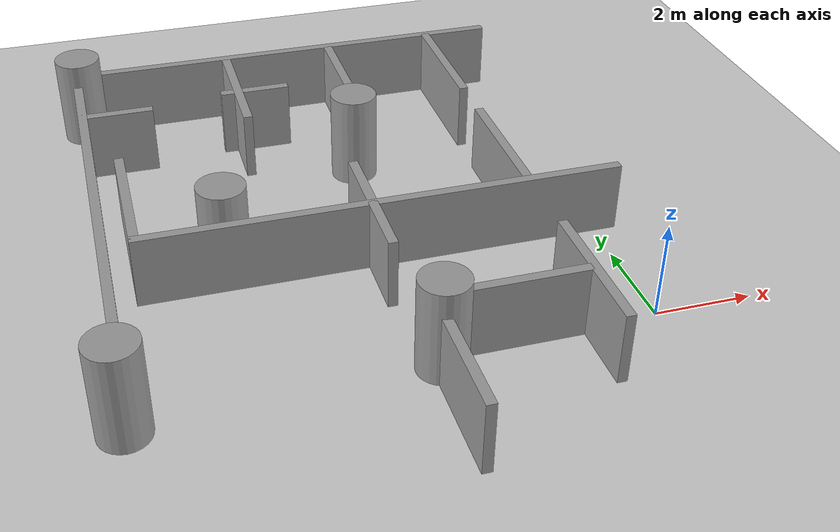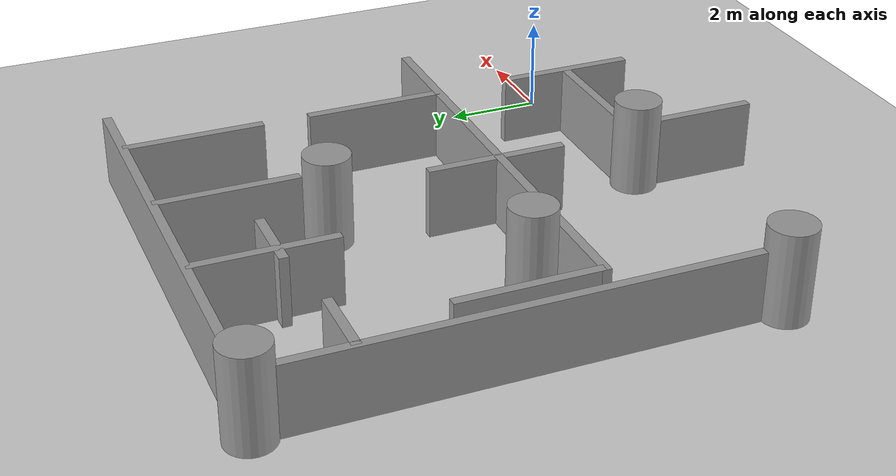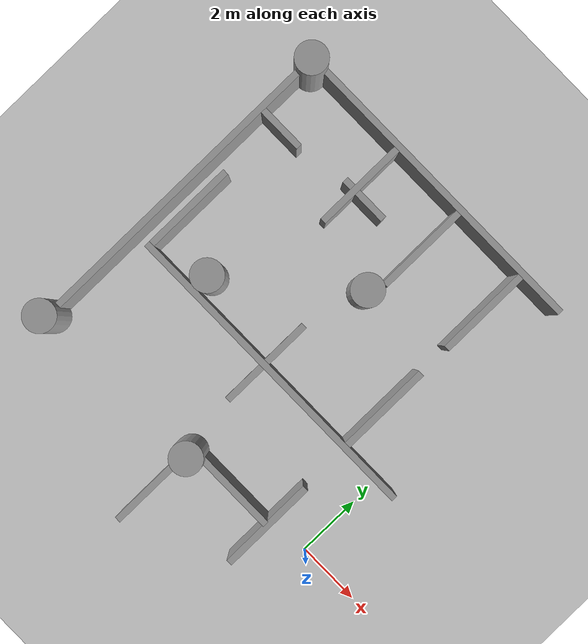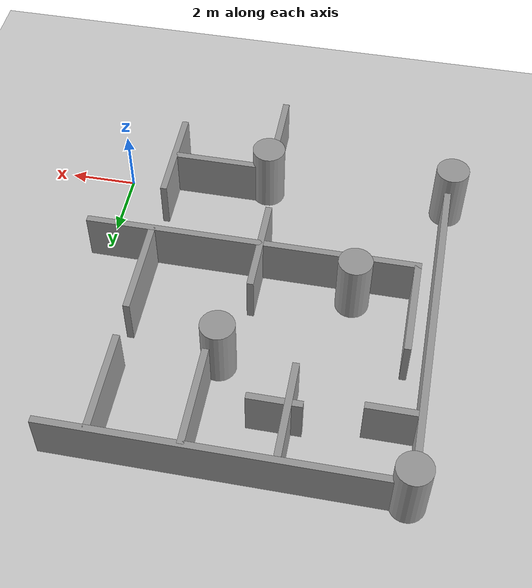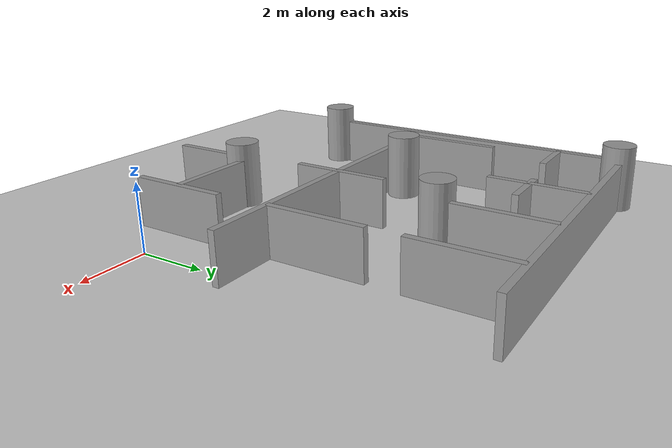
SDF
<sdf version="1.7">
 <world name="default">
  <model name="ground_plane">
   <static>1</static>
   <link name="link">
    <collision name="collision">
     <geometry><plane><normal>0 0 1</normal><size>100 100</size></plane></geometry>
     <surface><friction><ode><mu>100</mu><mu2>50</mu2></ode></friction></surface>
    </collision>
    <visual name="visual">
     <cast_shadows>0</cast_shadows>
     <geometry><plane><normal>0 0 1</normal><size>100 100</size></plane></geometry>
     <material>
      <script><uri>file://media/materials/scripts/gazebo.material</uri><name>Gazebo/Grey</name></script>
     </material>
    </visual>
   </link>
  </model>
  <model name="wall_10x3_clone">
   <link name="link">
    <inertial>
     <mass>1</mass>
     <inertia>
      <ixx>0.166667</ixx>
      <ixy>0</ixy>
      <ixz>0</ixz>
      <iyy>0.166667</iyy>
      <iyz>0</iyz>
      <izz>0.166667</izz>
     </inertia>
    </inertial>
    <visual name="visual">
     <geometry><box><size>10 0.2 1.5</size></box></geometry>
     <material>
      <script><name>Gazebo/Grey</name><uri>file://media/materials/scripts/gazebo.material</uri></script>
      <shader type="pixel"><normal_map>__default__</normal_map></shader>
      <ambient>0.3 0.3 0.3 1</ambient>
      <diffuse>0.7 0.7 0.7 1</diffuse>
      <specular>0.01 0.01 0.01 1</specular>
      <emissive>0 0 0 1</emissive>
     </material>
    </visual>
    <collision name="collision">
     <geometry><box><size>10 0.2 1.5</size></box></geometry>
     <surface>
      <friction>
       <ode><mu>1</mu><mu2>1</mu2><fdir1>0 0 0</fdir1><slip1>0</slip1><slip2>0</slip2></ode>
       <torsional>
        <coefficient>1</coefficient>
        <patch_radius>0</patch_radius>
        <surface_radius>0</surface_radius>
        <use_patch_radius>1</use_patch_radius>
        <ode><slip>0</slip></ode>
       </torsional>
      </friction>
      <bounce><restitution_coefficient>0</restitution_coefficient><threshold>1e+06</threshold></bounce>
      <contact>
       <collide_without_contact>0</collide_without_contact>
       <collide_without_contact_bitmask>1</collide_without_contact_bitmask>
       <collide_bitmask>1</collide_bitmask>
       <ode>
        <soft_cfm>0</soft_cfm>
        <soft_erp>0.2</soft_erp>
        <kp>1e+13</kp>
        <kd>1</kd>
        <max_vel>0.01</max_vel>
        <min_depth>0</min_depth>
       </ode>
       <bullet>
        <split_impulse>1</split_impulse>
        <split_impulse_penetration_threshold>-0.01</split_impulse_penetration_threshold>
        <soft_cfm>0</soft_cfm>
        <soft_erp>0.2</soft_erp>
        <kp>1e+13</kp>
        <kd>1</kd>
       </bullet>
      </contact>
     </surface>
    </collision>
   </link>
   <static>1</static>
   <pose>-5 10 0.75 0 -0 0</pose>
  </model>
  <model name="wall_10x3_clone_3_clone">
   <link name="link">
    <inertial>
     <mass>1</mass>
     <inertia>
      <ixx>0.166667</ixx>
      <ixy>0</ixy>
      <ixz>0</ixz>
      <iyy>0.166667</iyy>
      <iyz>0</iyz>
      <izz>0.166667</izz>
     </inertia>
    </inertial>
    <visual name="visual">
     <geometry><box><size>10 0.2 1.5</size></box></geometry>
     <material>
      <script><name>Gazebo/Grey</name><uri>file://media/materials/scripts/gazebo.material</uri></script>
      <shader type="pixel"><normal_map>__default__</normal_map></shader>
      <ambient>0.3 0.3 0.3 1</ambient>
      <diffuse>0.7 0.7 0.7 1</diffuse>
      <specular>0.01 0.01 0.01 1</specular>
      <emissive>0 0 0 1</emissive>
     </material>
    </visual>
    <collision name="collision">
     <geometry><box><size>10 0.2 1.5</size></box></geometry>
     <surface>
      <friction>
       <ode><mu>1</mu><mu2>1</mu2><fdir1>0 0 0</fdir1><slip1>0</slip1><slip2>0</slip2></ode>
       <torsional>
        <coefficient>1</coefficient>
        <patch_radius>0</patch_radius>
        <surface_radius>0</surface_radius>
        <use_patch_radius>1</use_patch_radius>
        <ode><slip>0</slip></ode>
       </torsional>
      </friction>
      <bounce><restitution_coefficient>0</restitution_coefficient><threshold>1e+06</threshold></bounce>
      <contact>
       <collide_without_contact>0</collide_without_contact>
       <collide_without_contact_bitmask>1</collide_without_contact_bitmask>
       <collide_bitmask>1</collide_bitmask>
       <ode>
        <soft_cfm>0</soft_cfm>
        <soft_erp>0.2</soft_erp>
        <kp>1e+13</kp>
        <kd>1</kd>
        <max_vel>0.01</max_vel>
        <min_depth>0</min_depth>
       </ode>
       <bullet>
        <split_impulse>1</split_impulse>
        <split_impulse_penetration_threshold>-0.01</split_impulse_penetration_threshold>
        <soft_cfm>0</soft_cfm>
        <soft_erp>0.2</soft_erp>
        <kp>1e+13</kp>
        <kd>1</kd>
       </bullet>
      </contact>
     </surface>
    </collision>
   </link>
   <static>1</static>
   <pose>-10 5 0.75 0 -0 1.5708</pose>
  </model>
  <model name="wall_10x3_clone_2_clone_0">
   <link name="link">
    <inertial>
     <mass>1</mass>
     <inertia>
      <ixx>0.166667</ixx>
      <ixy>0</ixy>
      <ixz>0</ixz>
      <iyy>0.166667</iyy>
      <iyz>0</iyz>
      <izz>0.166667</izz>
     </inertia>
    </inertial>
    <visual name="visual">
     <geometry><box><size>10 0.2 1.5</size></box></geometry>
     <material>
      <script><name>Gazebo/Grey</name><uri>file://media/materials/scripts/gazebo.material</uri></script>
      <shader type="pixel"><normal_map>__default__</normal_map></shader>
      <ambient>0.3 0.3 0.3 1</ambient>
      <diffuse>0.7 0.7 0.7 1</diffuse>
      <specular>0.01 0.01 0.01 1</specular>
      <emissive>0 0 0 1</emissive>
     </material>
    </visual>
    <collision name="collision">
     <geometry><box><size>10 0.2 1.5</size></box></geometry>
     <surface>
      <friction>
       <ode><mu>1</mu><mu2>1</mu2><fdir1>0 0 0</fdir1><slip1>0</slip1><slip2>0</slip2></ode>
       <torsional>
        <coefficient>1</coefficient>
        <patch_radius>0</patch_radius>
        <surface_radius>0</surface_radius>
        <use_patch_radius>1</use_patch_radius>
        <ode><slip>0</slip></ode>
       </torsional>
      </friction>
      <bounce><restitution_coefficient>0</restitution_coefficient><threshold>1e+06</threshold></bounce>
      <contact>
       <collide_without_contact>0</collide_without_contact>
       <collide_without_contact_bitmask>1</collide_without_contact_bitmask>
       <collide_bitmask>1</collide_bitmask>
       <ode>
        <soft_cfm>0</soft_cfm>
        <soft_erp>0.2</soft_erp>
        <kp>1e+13</kp>
        <kd>1</kd>
        <max_vel>0.01</max_vel>
        <min_depth>0</min_depth>
       </ode>
       <bullet>
        <split_impulse>1</split_impulse>
        <split_impulse_penetration_threshold>-0.01</split_impulse_penetration_threshold>
        <soft_cfm>0</soft_cfm>
        <soft_erp>0.2</soft_erp>
        <kp>1e+13</kp>
        <kd>1</kd>
       </bullet>
      </contact>
     </surface>
    </collision>
   </link>
   <static>1</static>
   <pose>-4.5 3 0.75 0 -0 0</pose>
  </model>
  <model name="wall_10x3_clone_3_clone_0_clone_clone_clone_clone_4">
   <link name="link">
    <inertial>
     <mass>1</mass>
     <inertia>
      <ixx>0.166667</ixx>
      <ixy>0</ixy>
      <ixz>0</ixz>
      <iyy>0.166667</iyy>
      <iyz>0</iyz>
      <izz>0.166667</izz>
     </inertia>
    </inertial>
    <visual name="visual">
     <geometry><box><size>3 0.2 1.5</size></box></geometry>
     <material>
      <script><name>Gazebo/Grey</name><uri>file://media/materials/scripts/gazebo.material</uri></script>
      <shader type="pixel"><normal_map>__default__</normal_map></shader>
      <ambient>0.3 0.3 0.3 1</ambient>
      <diffuse>0.7 0.7 0.7 1</diffuse>
      <specular>0.01 0.01 0.01 1</specular>
      <emissive>0 0 0 1</emissive>
     </material>
    </visual>
    <collision name="collision">
     <geometry><box><size>3 0.2 1.5</size></box></geometry>
     <surface>
      <friction>
       <ode><mu>1</mu><mu2>1</mu2><fdir1>0 0 0</fdir1><slip1>0</slip1><slip2>0</slip2></ode>
       <torsional>
        <coefficient>1</coefficient>
        <patch_radius>0</patch_radius>
        <surface_radius>0</surface_radius>
        <use_patch_radius>1</use_patch_radius>
        <ode><slip>0</slip></ode>
       </torsional>
      </friction>
      <bounce><restitution_coefficient>0</restitution_coefficient><threshold>1e+06</threshold></bounce>
      <contact>
       <collide_without_contact>0</collide_without_contact>
       <collide_without_contact_bitmask>1</collide_without_contact_bitmask>
       <collide_bitmask>1</collide_bitmask>
       <ode>
        <soft_cfm>0</soft_cfm>
        <soft_erp>0.2</soft_erp>
        <kp>1e+13</kp>
        <kd>1</kd>
        <max_vel>0.01</max_vel>
        <min_depth>0</min_depth>
       </ode>
       <bullet>
        <split_impulse>1</split_impulse>
        <split_impulse_penetration_threshold>-0.01</split_impulse_penetration_threshold>
        <soft_cfm>0</soft_cfm>
        <soft_erp>0.2</soft_erp>
        <kp>1e+13</kp>
        <kd>1</kd>
       </bullet>
      </contact>
     </surface>
    </collision>
   </link>
   <static>1</static>
   <pose>-1.5 4.5 0.75 0 -0 1.5708</pose>
  </model>
  <model name="wall_10x3_clone_3_clone_0_clone_clone_clone_clone_5">
   <link name="link">
    <inertial>
     <mass>1</mass>
     <inertia>
      <ixx>0.166667</ixx>
      <ixy>0</ixy>
      <ixz>0</ixz>
      <iyy>0.166667</iyy>
      <iyz>0</iyz>
      <izz>0.166667</izz>
     </inertia>
    </inertial>
    <visual name="visual">
     <geometry><box><size>3 0.2 1.5</size></box></geometry>
     <material>
      <script><name>Gazebo/Grey</name><uri>file://media/materials/scripts/gazebo.material</uri></script>
      <shader type="pixel"><normal_map>__default__</normal_map></shader>
      <ambient>0.3 0.3 0.3 1</ambient>
      <diffuse>0.7 0.7 0.7 1</diffuse>
      <specular>0.01 0.01 0.01 1</specular>
      <emissive>0 0 0 1</emissive>
     </material>
    </visual>
    <collision name="collision">
     <geometry><box><size>3 0.2 1.5</size></box></geometry>
     <surface>
      <friction>
       <ode><mu>1</mu><mu2>1</mu2><fdir1>0 0 0</fdir1><slip1>0</slip1><slip2>0</slip2></ode>
       <torsional>
        <coefficient>1</coefficient>
        <patch_radius>0</patch_radius>
        <surface_radius>0</surface_radius>
        <use_patch_radius>1</use_patch_radius>
        <ode><slip>0</slip></ode>
       </torsional>
      </friction>
      <bounce><restitution_coefficient>0</restitution_coefficient><threshold>1e+06</threshold></bounce>
      <contact>
       <collide_without_contact>0</collide_without_contact>
       <collide_without_contact_bitmask>1</collide_without_contact_bitmask>
       <collide_bitmask>1</collide_bitmask>
       <ode>
        <soft_cfm>0</soft_cfm>
        <soft_erp>0.2</soft_erp>
        <kp>1e+13</kp>
        <kd>1</kd>
        <max_vel>0.01</max_vel>
        <min_depth>0</min_depth>
       </ode>
       <bullet>
        <split_impulse>1</split_impulse>
        <split_impulse_penetration_threshold>-0.01</split_impulse_penetration_threshold>
        <soft_cfm>0</soft_cfm>
        <soft_erp>0.2</soft_erp>
        <kp>1e+13</kp>
        <kd>1</kd>
       </bullet>
      </contact>
     </surface>
    </collision>
   </link>
   <static>1</static>
   <pose>-1.5 8.5 0.75 0 -0 1.5708</pose>
  </model>
  <model name="wall_10x3_clone_3_clone_0_clone_clone_clone_clone_6_clone">
   <link name="link">
    <inertial>
     <mass>1</mass>
     <inertia>
      <ixx>0.166667</ixx>
      <ixy>0</ixy>
      <ixz>0</ixz>
      <iyy>0.166667</iyy>
      <iyz>0</iyz>
      <izz>0.166667</izz>
     </inertia>
    </inertial>
    <visual name="visual">
     <geometry><box><size>3 0.2 1.5</size></box></geometry>
     <material>
      <script><name>Gazebo/Grey</name><uri>file://media/materials/scripts/gazebo.material</uri></script>
      <shader type="pixel"><normal_map>__default__</normal_map></shader>
      <ambient>0.3 0.3 0.3 1</ambient>
      <diffuse>0.7 0.7 0.7 1</diffuse>
      <specular>0.01 0.01 0.01 1</specular>
      <emissive>0 0 0 1</emissive>
     </material>
    </visual>
    <collision name="collision">
     <geometry><box><size>3 0.2 1.5</size></box></geometry>
     <surface>
      <friction>
       <ode><mu>1</mu><mu2>1</mu2><fdir1>0 0 0</fdir1><slip1>0</slip1><slip2>0</slip2></ode>
       <torsional>
        <coefficient>1</coefficient>
        <patch_radius>0</patch_radius>
        <surface_radius>0</surface_radius>
        <use_patch_radius>1</use_patch_radius>
        <ode><slip>0</slip></ode>
       </torsional>
      </friction>
      <bounce><restitution_coefficient>0</restitution_coefficient><threshold>1e+06</threshold></bounce>
      <contact>
       <collide_without_contact>0</collide_without_contact>
       <collide_without_contact_bitmask>1</collide_without_contact_bitmask>
       <collide_bitmask>1</collide_bitmask>
       <ode>
        <soft_cfm>0</soft_cfm>
        <soft_erp>0.2</soft_erp>
        <kp>1e+13</kp>
        <kd>1</kd>
        <max_vel>0.01</max_vel>
        <min_depth>0</min_depth>
       </ode>
       <bullet>
        <split_impulse>1</split_impulse>
        <split_impulse_penetration_threshold>-0.01</split_impulse_penetration_threshold>
        <soft_cfm>0</soft_cfm>
        <soft_erp>0.2</soft_erp>
        <kp>1e+13</kp>
        <kd>1</kd>
       </bullet>
      </contact>
     </surface>
    </collision>
   </link>
   <static>1</static>
   <pose>-9.4 4.5 0.75 0 -0 1.5708</pose>
  </model>
  <model name="wall_10x3_clone_3_clone_0_clone_clone_clone_clone_6_clone_0">
   <link name="link">
    <inertial>
     <mass>1</mass>
     <inertia>
      <ixx>0.166667</ixx>
      <ixy>0</ixy>
      <ixz>0</ixz>
      <iyy>0.166667</iyy>
      <iyz>0</iyz>
      <izz>0.166667</izz>
     </inertia>
    </inertial>
    <visual name="visual">
     <geometry><box><size>3 0.2 1.5</size></box></geometry>
     <material>
      <script><name>Gazebo/Grey</name><uri>file://media/materials/scripts/gazebo.material</uri></script>
      <shader type="pixel"><normal_map>__default__</normal_map></shader>
      <ambient>0.3 0.3 0.3 1</ambient>
      <diffuse>0.7 0.7 0.7 1</diffuse>
      <specular>0.01 0.01 0.01 1</specular>
      <emissive>0 0 0 1</emissive>
     </material>
    </visual>
    <collision name="collision">
     <geometry><box><size>3 0.2 1.5</size></box></geometry>
     <surface>
      <friction>
       <ode><mu>1</mu><mu2>1</mu2><fdir1>0 0 0</fdir1><slip1>0</slip1><slip2>0</slip2></ode>
       <torsional>
        <coefficient>1</coefficient>
        <patch_radius>0</patch_radius>
        <surface_radius>0</surface_radius>
        <use_patch_radius>1</use_patch_radius>
        <ode><slip>0</slip></ode>
       </torsional>
      </friction>
      <bounce><restitution_coefficient>0</restitution_coefficient><threshold>1e+06</threshold></bounce>
      <contact>
       <collide_without_contact>0</collide_without_contact>
       <collide_without_contact_bitmask>1</collide_without_contact_bitmask>
       <collide_bitmask>1</collide_bitmask>
       <ode>
        <soft_cfm>0</soft_cfm>
        <soft_erp>0.2</soft_erp>
        <kp>1e+13</kp>
        <kd>1</kd>
        <max_vel>0.01</max_vel>
        <min_depth>0</min_depth>
       </ode>
       <bullet>
        <split_impulse>1</split_impulse>
        <split_impulse_penetration_threshold>-0.01</split_impulse_penetration_threshold>
        <soft_cfm>0</soft_cfm>
        <soft_erp>0.2</soft_erp>
        <kp>1e+13</kp>
        <kd>1</kd>
       </bullet>
      </contact>
     </surface>
    </collision>
   </link>
   <static>1</static>
   <pose>-4 8.5 0.75 0 -0 1.5708</pose>
  </model>
  <model name="wall_10x3_clone_3_clone_0_clone_clone_clone_clone_6_clone_1">
   <link name="link">
    <inertial>
     <mass>1</mass>
     <inertia>
      <ixx>0.166667</ixx>
      <ixy>0</ixy>
      <ixz>0</ixz>
      <iyy>0.166667</iyy>
      <iyz>0</iyz>
      <izz>0.166667</izz>
     </inertia>
    </inertial>
    <visual name="visual">
     <geometry><box><size>3 0.2 1.5</size></box></geometry>
     <material>
      <script><name>Gazebo/Grey</name><uri>file://media/materials/scripts/gazebo.material</uri></script>
      <shader type="pixel"><normal_map>__default__</normal_map></shader>
      <ambient>0.3 0.3 0.3 1</ambient>
      <diffuse>0.7 0.7 0.7 1</diffuse>
      <specular>0.01 0.01 0.01 1</specular>
      <emissive>0 0 0 1</emissive>
     </material>
    </visual>
    <collision name="collision">
     <geometry><box><size>3 0.2 1.5</size></box></geometry>
     <surface>
      <friction>
       <ode><mu>1</mu><mu2>1</mu2><fdir1>0 0 0</fdir1><slip1>0</slip1><slip2>0</slip2></ode>
       <torsional>
        <coefficient>1</coefficient>
        <patch_radius>0</patch_radius>
        <surface_radius>0</surface_radius>
        <use_patch_radius>1</use_patch_radius>
        <ode><slip>0</slip></ode>
       </torsional>
      </friction>
      <bounce><restitution_coefficient>0</restitution_coefficient><threshold>1e+06</threshold></bounce>
      <contact>
       <collide_without_contact>0</collide_without_contact>
       <collide_without_contact_bitmask>1</collide_without_contact_bitmask>
       <collide_bitmask>1</collide_bitmask>
       <ode>
        <soft_cfm>0</soft_cfm>
        <soft_erp>0.2</soft_erp>
        <kp>1e+13</kp>
        <kd>1</kd>
        <max_vel>0.01</max_vel>
        <min_depth>0</min_depth>
       </ode>
       <bullet>
        <split_impulse>1</split_impulse>
        <split_impulse_penetration_threshold>-0.01</split_impulse_penetration_threshold>
        <soft_cfm>0</soft_cfm>
        <soft_erp>0.2</soft_erp>
        <kp>1e+13</kp>
        <kd>1</kd>
       </bullet>
      </contact>
     </surface>
    </collision>
   </link>
   <static>1</static>
   <pose>-6.5 8.5 0.75 0 -0 1.5708</pose>
  </model>
  <model name="wall_10x3_clone_3_clone_0_clone_clone_clone_clone_6_clone_8">
   <link name="link">
    <inertial>
     <mass>1</mass>
     <inertia>
      <ixx>0.166667</ixx>
      <ixy>0</ixy>
      <ixz>0</ixz>
      <iyy>0.166667</iyy>
      <iyz>0</iyz>
      <izz>0.166667</izz>
     </inertia>
    </inertial>
    <visual name="visual">
     <geometry><box><size>3 0.2 1.5</size></box></geometry>
     <material>
      <script><name>Gazebo/Grey</name><uri>file://media/materials/scripts/gazebo.material</uri></script>
      <shader type="pixel"><normal_map>__default__</normal_map></shader>
      <ambient>0.3 0.3 0.3 1</ambient>
      <diffuse>0.7 0.7 0.7 1</diffuse>
      <specular>0.01 0.01 0.01 1</specular>
      <emissive>0 0 0 1</emissive>
     </material>
    </visual>
    <collision name="collision">
     <geometry><box><size>3 0.2 1.5</size></box></geometry>
     <surface>
      <friction>
       <ode><mu>1</mu><mu2>1</mu2><fdir1>0 0 0</fdir1><slip1>0</slip1><slip2>0</slip2></ode>
       <torsional>
        <coefficient>1</coefficient>
        <patch_radius>0</patch_radius>
        <surface_radius>0</surface_radius>
        <use_patch_radius>1</use_patch_radius>
        <ode><slip>0</slip></ode>
       </torsional>
      </friction>
      <bounce><restitution_coefficient>0</restitution_coefficient><threshold>1e+06</threshold></bounce>
      <contact>
       <collide_without_contact>0</collide_without_contact>
       <collide_without_contact_bitmask>1</collide_without_contact_bitmask>
       <collide_bitmask>1</collide_bitmask>
       <ode>
        <soft_cfm>0</soft_cfm>
        <soft_erp>0.2</soft_erp>
        <kp>1e+13</kp>
        <kd>1</kd>
        <max_vel>0.01</max_vel>
        <min_depth>0</min_depth>
       </ode>
       <bullet>
        <split_impulse>1</split_impulse>
        <split_impulse_penetration_threshold>-0.01</split_impulse_penetration_threshold>
        <soft_cfm>0</soft_cfm>
        <soft_erp>0.2</soft_erp>
        <kp>1e+13</kp>
        <kd>1</kd>
       </bullet>
      </contact>
     </surface>
    </collision>
   </link>
   <static>1</static>
   <pose>-4.5 -1.5 0.75 0 -0 1.5708</pose>
  </model>
  <model name="wall_10x3_clone_3_clone_0_clone_clone_clone_clone_clone_1">
   <link name="link">
    <inertial>
     <mass>1</mass>
     <inertia>
      <ixx>0.166667</ixx>
      <ixy>0</ixy>
      <ixz>0</ixz>
      <iyy>0.166667</iyy>
      <iyz>0</iyz>
      <izz>0.166667</izz>
     </inertia>
    </inertial>
    <visual name="visual">
     <geometry><box><size>3 0.2 1.5</size></box></geometry>
     <material>
      <script><name>Gazebo/Grey</name><uri>file://media/materials/scripts/gazebo.material</uri></script>
      <shader type="pixel"><normal_map>__default__</normal_map></shader>
      <ambient>0.3 0.3 0.3 1</ambient>
      <diffuse>0.7 0.7 0.7 1</diffuse>
      <specular>0.01 0.01 0.01 1</specular>
      <emissive>0 0 0 1</emissive>
     </material>
    </visual>
    <collision name="collision">
     <geometry><box><size>3 0.2 1.5</size></box></geometry>
     <surface>
      <friction>
       <ode><mu>1</mu><mu2>1</mu2><fdir1>0 0 0</fdir1><slip1>0</slip1><slip2>0</slip2></ode>
       <torsional>
        <coefficient>1</coefficient>
        <patch_radius>0</patch_radius>
        <surface_radius>0</surface_radius>
        <use_patch_radius>1</use_patch_radius>
        <ode><slip>0</slip></ode>
       </torsional>
      </friction>
      <bounce><restitution_coefficient>0</restitution_coefficient><threshold>1e+06</threshold></bounce>
      <contact>
       <collide_without_contact>0</collide_without_contact>
       <collide_without_contact_bitmask>1</collide_without_contact_bitmask>
       <collide_bitmask>1</collide_bitmask>
       <ode>
        <soft_cfm>0</soft_cfm>
        <soft_erp>0.2</soft_erp>
        <kp>1e+13</kp>
        <kd>1</kd>
        <max_vel>0.01</max_vel>
        <min_depth>0</min_depth>
       </ode>
       <bullet>
        <split_impulse>1</split_impulse>
        <split_impulse_penetration_threshold>-0.01</split_impulse_penetration_threshold>
        <soft_cfm>0</soft_cfm>
        <soft_erp>0.2</soft_erp>
        <kp>1e+13</kp>
        <kd>1</kd>
       </bullet>
      </contact>
     </surface>
    </collision>
   </link>
   <static>1</static>
   <pose>-3 -0.1 0.75 0 -0 0</pose>
  </model>
  <model name="wall_10x3_clone_3_clone_0_clone_clone_clone_clone_6_clone_4_clone">
   <link name="link">
    <inertial>
     <mass>1</mass>
     <inertia>
      <ixx>0.166667</ixx>
      <ixy>0</ixy>
      <ixz>0</ixz>
      <iyy>0.166667</iyy>
      <iyz>0</iyz>
      <izz>0.166667</izz>
     </inertia>
    </inertial>
    <visual name="visual">
     <geometry><box><size>3 0.2 1.5</size></box></geometry>
     <material>
      <script><name>Gazebo/Grey</name><uri>file://media/materials/scripts/gazebo.material</uri></script>
      <shader type="pixel"><normal_map>__default__</normal_map></shader>
      <ambient>0.3 0.3 0.3 1</ambient>
      <diffuse>0.7 0.7 0.7 1</diffuse>
      <specular>0.01 0.01 0.01 1</specular>
      <emissive>0 0 0 1</emissive>
     </material>
    </visual>
    <collision name="collision">
     <geometry><box><size>3 0.2 1.5</size></box></geometry>
     <surface>
      <friction>
       <ode><mu>1</mu><mu2>1</mu2><fdir1>0 0 0</fdir1><slip1>0</slip1><slip2>0</slip2></ode>
       <torsional>
        <coefficient>1</coefficient>
        <patch_radius>0</patch_radius>
        <surface_radius>0</surface_radius>
        <use_patch_radius>1</use_patch_radius>
        <ode><slip>0</slip></ode>
       </torsional>
      </friction>
      <bounce><restitution_coefficient>0</restitution_coefficient><threshold>1e+06</threshold></bounce>
      <contact>
       <collide_without_contact>0</collide_without_contact>
       <collide_without_contact_bitmask>1</collide_without_contact_bitmask>
       <collide_bitmask>1</collide_bitmask>
       <ode>
        <soft_cfm>0</soft_cfm>
        <soft_erp>0.2</soft_erp>
        <kp>1e+13</kp>
        <kd>1</kd>
        <max_vel>0.01</max_vel>
        <min_depth>0</min_depth>
       </ode>
       <bullet>
        <split_impulse>1</split_impulse>
        <split_impulse_penetration_threshold>-0.01</split_impulse_penetration_threshold>
        <soft_cfm>0</soft_cfm>
        <soft_erp>0.2</soft_erp>
        <kp>1e+13</kp>
        <kd>1</kd>
       </bullet>
      </contact>
     </surface>
    </collision>
   </link>
   <static>1</static>
   <pose>-1.44854 -0.095137 0.75 0 -0 1.5708</pose>
  </model>
  <model name="wall_10x3_clone_3_clone_0_clone_clone_clone_clone_6_clone_4_clone_0">
   <link name="link">
    <inertial>
     <mass>1</mass>
     <inertia>
      <ixx>0.166667</ixx>
      <ixy>0</ixy>
      <ixz>0</ixz>
      <iyy>0.166667</iyy>
      <iyz>0</iyz>
      <izz>0.166667</izz>
     </inertia>
    </inertial>
    <visual name="visual">
     <geometry><box><size>3 0.2 1.5</size></box></geometry>
     <material>
      <script><name>Gazebo/Grey</name><uri>file://media/materials/scripts/gazebo.material</uri></script>
      <shader type="pixel"><normal_map>__default__</normal_map></shader>
      <ambient>0.3 0.3 0.3 1</ambient>
      <diffuse>0.7 0.7 0.7 1</diffuse>
      <specular>0.01 0.01 0.01 1</specular>
      <emissive>0 0 0 1</emissive>
     </material>
    </visual>
    <collision name="collision">
     <geometry><box><size>3 0.2 1.5</size></box></geometry>
     <surface>
      <friction>
       <ode><mu>1</mu><mu2>1</mu2><fdir1>0 0 0</fdir1><slip1>0</slip1><slip2>0</slip2></ode>
       <torsional>
        <coefficient>1</coefficient>
        <patch_radius>0</patch_radius>
        <surface_radius>0</surface_radius>
        <use_patch_radius>1</use_patch_radius>
        <ode><slip>0</slip></ode>
       </torsional>
      </friction>
      <bounce><restitution_coefficient>0</restitution_coefficient><threshold>1e+06</threshold></bounce>
      <contact>
       <collide_without_contact>0</collide_without_contact>
       <collide_without_contact_bitmask>1</collide_without_contact_bitmask>
       <collide_bitmask>1</collide_bitmask>
       <ode>
        <soft_cfm>0</soft_cfm>
        <soft_erp>0.2</soft_erp>
        <kp>1e+13</kp>
        <kd>1</kd>
        <max_vel>0.01</max_vel>
        <min_depth>0</min_depth>
       </ode>
       <bullet>
        <split_impulse>1</split_impulse>
        <split_impulse_penetration_threshold>-0.01</split_impulse_penetration_threshold>
        <soft_cfm>0</soft_cfm>
        <soft_erp>0.2</soft_erp>
        <kp>1e+13</kp>
        <kd>1</kd>
       </bullet>
      </contact>
     </surface>
    </collision>
   </link>
   <static>1</static>
   <pose>-4.75943 3.07419 0.75 0 -0 1.5708</pose>
  </model>
  <model name="wall_10x3_clone_3_clone_0_clone_clone_clone_clone_clone_0_clone_clone_7">
   <link name="link">
    <inertial>
     <mass>0.514545</mass>
     <inertia>
      <ixx>0.0981923</ixx>
      <ixy>0</ixy>
      <ixz>0</ixz>
      <iyy>0.198649</iyy>
      <iyz>0</iyz>
      <izz>0.103887</izz>
     </inertia>
    </inertial>
    <visual name="visual">
     <geometry><box><size>1.54363 0.2 1.5</size></box></geometry>
     <material>
      <script><name>Gazebo/Grey</name><uri>file://media/materials/scripts/gazebo.material</uri></script>
      <shader type="pixel"><normal_map>__default__</normal_map></shader>
      <ambient>0.3 0.3 0.3 1</ambient>
      <diffuse>0.7 0.7 0.7 1</diffuse>
      <specular>0.01 0.01 0.01 1</specular>
      <emissive>0 0 0 1</emissive>
     </material>
    </visual>
    <collision name="collision">
     <geometry><box><size>1.54363 0.2 1.5</size></box></geometry>
     <surface>
      <friction>
       <ode><mu>1</mu><mu2>1</mu2><fdir1>0 0 0</fdir1><slip1>0</slip1><slip2>0</slip2></ode>
       <torsional>
        <coefficient>1</coefficient>
        <patch_radius>0</patch_radius>
        <surface_radius>0</surface_radius>
        <use_patch_radius>1</use_patch_radius>
        <ode><slip>0</slip></ode>
       </torsional>
      </friction>
      <bounce><restitution_coefficient>0</restitution_coefficient><threshold>1e+06</threshold></bounce>
      <contact>
       <collide_without_contact>0</collide_without_contact>
       <collide_without_contact_bitmask>1</collide_without_contact_bitmask>
       <collide_bitmask>1</collide_bitmask>
       <ode>
        <soft_cfm>0</soft_cfm>
        <soft_erp>0.2</soft_erp>
        <kp>1e+13</kp>
        <kd>1</kd>
        <max_vel>0.01</max_vel>
        <min_depth>0</min_depth>
       </ode>
       <bullet>
        <split_impulse>1</split_impulse>
        <split_impulse_penetration_threshold>-0.01</split_impulse_penetration_threshold>
        <soft_cfm>0</soft_cfm>
        <soft_erp>0.2</soft_erp>
        <kp>1e+13</kp>
        <kd>1</kd>
       </bullet>
      </contact>
     </surface>
    </collision>
   </link>
   <static>1</static>
   <pose>-9.24175 7.97182 0.75 0 -0 0</pose>
  </model>
  <model name="wall_10x3_clone_3_clone_0_clone_clone_clone_clone_clone_0_clone_clone_8">
   <link name="link">
    <inertial>
     <mass>0.514545</mass>
     <inertia>
      <ixx>0.0981923</ixx>
      <ixy>0</ixy>
      <ixz>0</ixz>
      <iyy>0.198649</iyy>
      <iyz>0</iyz>
      <izz>0.103887</izz>
     </inertia>
    </inertial>
    <visual name="visual">
     <geometry><box><size>1.54363 0.2 1.5</size></box></geometry>
     <material>
      <script><name>Gazebo/Grey</name><uri>file://media/materials/scripts/gazebo.material</uri></script>
      <shader type="pixel"><normal_map>__default__</normal_map></shader>
      <ambient>0.3 0.3 0.3 1</ambient>
      <diffuse>0.7 0.7 0.7 1</diffuse>
      <specular>0.01 0.01 0.01 1</specular>
      <emissive>0 0 0 1</emissive>
     </material>
    </visual>
    <collision name="collision">
     <geometry><box><size>1.54363 0.2 1.5</size></box></geometry>
     <surface>
      <friction>
       <ode><mu>1</mu><mu2>1</mu2><fdir1>0 0 0</fdir1><slip1>0</slip1><slip2>0</slip2></ode>
       <torsional>
        <coefficient>1</coefficient>
        <patch_radius>0</patch_radius>
        <surface_radius>0</surface_radius>
        <use_patch_radius>1</use_patch_radius>
        <ode><slip>0</slip></ode>
       </torsional>
      </friction>
      <bounce><restitution_coefficient>0</restitution_coefficient><threshold>1e+06</threshold></bounce>
      <contact>
       <collide_without_contact>0</collide_without_contact>
       <collide_without_contact_bitmask>1</collide_without_contact_bitmask>
       <collide_bitmask>1</collide_bitmask>
       <ode>
        <soft_cfm>0</soft_cfm>
        <soft_erp>0.2</soft_erp>
        <kp>1e+13</kp>
        <kd>1</kd>
        <max_vel>0.01</max_vel>
        <min_depth>0</min_depth>
       </ode>
       <bullet>
        <split_impulse>1</split_impulse>
        <split_impulse_penetration_threshold>-0.01</split_impulse_penetration_threshold>
        <soft_cfm>0</soft_cfm>
        <soft_erp>0.2</soft_erp>
        <kp>1e+13</kp>
        <kd>1</kd>
       </bullet>
      </contact>
     </surface>
    </collision>
   </link>
   <static>1</static>
   <pose>-6.1256 8.25743 0.75 0 -0 0</pose>
  </model>
  <model name="unit_cylinder_clone_4">
   <link name="link">
    <inertial>
     <mass>1</mass>
     <inertia><ixx>0.145833</ixx><ixy>0</ixy><ixz>0</ixz><iyy>0.145833</iyy><iyz>0</iyz><izz>0.125</izz></inertia>
    </inertial>
    <visual name="visual">
     <geometry><cylinder><radius>0.5</radius><length>2</length></cylinder></geometry>
     <material>
      <script><name>Gazebo/Grey</name><uri>file://media/materials/scripts/gazebo.material</uri></script>
      <shader type="pixel"><normal_map>__default__</normal_map></shader>
      <ambient>0.3 0.3 0.3 1</ambient>
      <diffuse>0.7 0.7 0.7 1</diffuse>
      <specular>0.01 0.01 0.01 1</specular>
      <emissive>0 0 0 1</emissive>
     </material>
    </visual>
    <collision name="collision">
     <geometry><cylinder><radius>0.5</radius><length>2</length></cylinder></geometry>
     <surface>
      <friction>
       <ode><mu>1</mu><mu2>1</mu2><fdir1>0 0 0</fdir1><slip1>0</slip1><slip2>0</slip2></ode>
       <torsional>
        <coefficient>1</coefficient>
        <patch_radius>0</patch_radius>
        <surface_radius>0</surface_radius>
        <use_patch_radius>1</use_patch_radius>
        <ode><slip>0</slip></ode>
       </torsional>
      </friction>
      <bounce><restitution_coefficient>0</restitution_coefficient><threshold>1e+06</threshold></bounce>
      <contact>
       <collide_without_contact>0</collide_without_contact>
       <collide_without_contact_bitmask>1</collide_without_contact_bitmask>
       <collide_bitmask>1</collide_bitmask>
       <ode>
        <soft_cfm>0</soft_cfm>
        <soft_erp>0.2</soft_erp>
        <kp>1e+13</kp>
        <kd>1</kd>
        <max_vel>0.01</max_vel>
        <min_depth>0</min_depth>
       </ode>
       <bullet>
        <split_impulse>1</split_impulse>
        <split_impulse_penetration_threshold>-0.01</split_impulse_penetration_threshold>
        <soft_cfm>0</soft_cfm>
        <soft_erp>0.2</soft_erp>
        <kp>1e+13</kp>
        <kd>1</kd>
       </bullet>
      </contact>
     </surface>
    </collision>
   </link>
   <static>0</static>
   <pose>-9.93238 9.87887 1 0 -0 1e-06</pose>
  </model>
  <model name="unit_cylinder_clone_6">
   <link name="link">
    <inertial>
     <mass>1</mass>
     <inertia><ixx>0.145833</ixx><ixy>0</ixy><ixz>0</ixz><iyy>0.145833</iyy><iyz>0</iyz><izz>0.125</izz></inertia>
    </inertial>
    <visual name="visual">
     <geometry><cylinder><radius>0.5</radius><length>2</length></cylinder></geometry>
     <material>
      <script><name>Gazebo/Grey</name><uri>file://media/materials/scripts/gazebo.material</uri></script>
      <shader type="pixel"><normal_map>__default__</normal_map></shader>
      <ambient>0.3 0.3 0.3 1</ambient>
      <diffuse>0.7 0.7 0.7 1</diffuse>
      <specular>0.01 0.01 0.01 1</specular>
      <emissive>0 0 0 1</emissive>
     </material>
    </visual>
    <collision name="collision">
     <geometry><cylinder><radius>0.5</radius><length>2</length></cylinder></geometry>
     <surface>
      <friction>
       <ode><mu>1</mu><mu2>1</mu2><fdir1>0 0 0</fdir1><slip1>0</slip1><slip2>0</slip2></ode>
       <torsional>
        <coefficient>1</coefficient>
        <patch_radius>0</patch_radius>
        <surface_radius>0</surface_radius>
        <use_patch_radius>1</use_patch_radius>
        <ode><slip>0</slip></ode>
       </torsional>
      </friction>
      <bounce><restitution_coefficient>0</restitution_coefficient><threshold>1e+06</threshold></bounce>
      <contact>
       <collide_without_contact>0</collide_without_contact>
       <collide_without_contact_bitmask>1</collide_without_contact_bitmask>
       <collide_bitmask>1</collide_bitmask>
       <ode>
        <soft_cfm>0</soft_cfm>
        <soft_erp>0.2</soft_erp>
        <kp>1e+13</kp>
        <kd>1</kd>
        <max_vel>0.01</max_vel>
        <min_depth>0</min_depth>
       </ode>
       <bullet>
        <split_impulse>1</split_impulse>
        <split_impulse_penetration_threshold>-0.01</split_impulse_penetration_threshold>
        <soft_cfm>0</soft_cfm>
        <soft_erp>0.2</soft_erp>
        <kp>1e+13</kp>
        <kd>1</kd>
       </bullet>
      </contact>
     </surface>
    </collision>
   </link>
   <static>0</static>
   <pose>-4.23843 6.51345 0.999995 0 -0 0.009373</pose>
  </model>
  <model name="unit_cylinder_clone_15">
   <link name="link">
    <inertial>
     <mass>1</mass>
     <inertia><ixx>0.145833</ixx><ixy>0</ixy><ixz>0</ixz><iyy>0.145833</iyy><iyz>0</iyz><izz>0.125</izz></inertia>
    </inertial>
    <visual name="visual">
     <geometry><cylinder><radius>0.5</radius><length>2</length></cylinder></geometry>
     <material>
      <script><name>Gazebo/Grey</name><uri>file://media/materials/scripts/gazebo.material</uri></script>
      <shader type="pixel"><normal_map>__default__</normal_map></shader>
      <ambient>0.3 0.3 0.3 1</ambient>
      <diffuse>0.7 0.7 0.7 1</diffuse>
      <specular>0.01 0.01 0.01 1</specular>
      <emissive>0 0 0 1</emissive>
     </material>
    </visual>
    <collision name="collision">
     <geometry><cylinder><radius>0.5</radius><length>2</length></cylinder></geometry>
     <surface>
      <friction>
       <ode><mu>1</mu><mu2>1</mu2><fdir1>0 0 0</fdir1><slip1>0</slip1><slip2>0</slip2></ode>
       <torsional>
        <coefficient>1</coefficient>
        <patch_radius>0</patch_radius>
        <surface_radius>0</surface_radius>
        <use_patch_radius>1</use_patch_radius>
        <ode><slip>0</slip></ode>
       </torsional>
      </friction>
      <bounce><restitution_coefficient>0</restitution_coefficient><threshold>1e+06</threshold></bounce>
      <contact>
       <collide_without_contact>0</collide_without_contact>
       <collide_without_contact_bitmask>1</collide_without_contact_bitmask>
       <collide_bitmask>1</collide_bitmask>
       <ode>
        <soft_cfm>0</soft_cfm>
        <soft_erp>0.2</soft_erp>
        <kp>1e+13</kp>
        <kd>1</kd>
        <max_vel>0.01</max_vel>
        <min_depth>0</min_depth>
       </ode>
       <bullet>
        <split_impulse>1</split_impulse>
        <split_impulse_penetration_threshold>-0.01</split_impulse_penetration_threshold>
        <soft_cfm>0</soft_cfm>
        <soft_erp>0.2</soft_erp>
        <kp>1e+13</kp>
        <kd>1</kd>
       </bullet>
      </contact>
     </surface>
    </collision>
   </link>
   <static>0</static>
   <pose>-10.0646 -0.503711 0.999993 0 -0 0.000923</pose>
  </model>
  <model name="unit_cylinder_clone_16">
   <link name="link">
    <inertial>
     <mass>1</mass>
     <inertia><ixx>0.145833</ixx><ixy>0</ixy><ixz>0</ixz><iyy>0.145833</iyy><iyz>0</iyz><izz>0.125</izz></inertia>
    </inertial>
    <visual name="visual">
     <geometry><cylinder><radius>0.5</radius><length>2</length></cylinder></geometry>
     <material>
      <script><name>Gazebo/Grey</name><uri>file://media/materials/scripts/gazebo.material</uri></script>
      <shader type="pixel"><normal_map>__default__</normal_map></shader>
      <ambient>0.3 0.3 0.3 1</ambient>
      <diffuse>0.7 0.7 0.7 1</diffuse>
      <specular>0.01 0.01 0.01 1</specular>
      <emissive>0 0 0 1</emissive>
     </material>
    </visual>
    <collision name="collision">
     <geometry><cylinder><radius>0.5</radius><length>2</length></cylinder></geometry>
     <surface>
      <friction>
       <ode><mu>1</mu><mu2>1</mu2><fdir1>0 0 0</fdir1><slip1>0</slip1><slip2>0</slip2></ode>
       <torsional>
        <coefficient>1</coefficient>
        <patch_radius>0</patch_radius>
        <surface_radius>0</surface_radius>
        <use_patch_radius>1</use_patch_radius>
        <ode><slip>0</slip></ode>
       </torsional>
      </friction>
      <bounce><restitution_coefficient>0</restitution_coefficient><threshold>1e+06</threshold></bounce>
      <contact>
       <collide_without_contact>0</collide_without_contact>
       <collide_without_contact_bitmask>1</collide_without_contact_bitmask>
       <collide_bitmask>1</collide_bitmask>
       <ode>
        <soft_cfm>0</soft_cfm>
        <soft_erp>0.2</soft_erp>
        <kp>1e+13</kp>
        <kd>1</kd>
        <max_vel>0.01</max_vel>
        <min_depth>0</min_depth>
       </ode>
       <bullet>
        <split_impulse>1</split_impulse>
        <split_impulse_penetration_threshold>-0.01</split_impulse_penetration_threshold>
        <soft_cfm>0</soft_cfm>
        <soft_erp>0.2</soft_erp>
        <kp>1e+13</kp>
        <kd>1</kd>
       </bullet>
      </contact>
     </surface>
    </collision>
   </link>
   <static>0</static>
   <pose>-7.62958 3.60394 1 0 -0 -0.001038</pose>
  </model>
  <model name="unit_cylinder_clone_21">
   <link name="link">
    <inertial>
     <mass>1</mass>
     <inertia><ixx>0.145833</ixx><ixy>0</ixy><ixz>0</ixz><iyy>0.145833</iyy><iyz>0</iyz><izz>0.125</izz></inertia>
    </inertial>
    <visual name="visual">
     <geometry><cylinder><radius>0.5</radius><length>2</length></cylinder></geometry>
     <material>
      <script><name>Gazebo/Grey</name><uri>file://media/materials/scripts/gazebo.material</uri></script>
      <shader type="pixel"><normal_map>__default__</normal_map></shader>
      <ambient>0.3 0.3 0.3 1</ambient>
      <diffuse>0.7 0.7 0.7 1</diffuse>
      <specular>0.01 0.01 0.01 1</specular>
      <emissive>0 0 0 1</emissive>
     </material>
    </visual>
    <collision name="collision">
     <geometry><cylinder><radius>0.5</radius><length>2</length></cylinder></geometry>
     <surface>
      <friction>
       <ode><mu>1</mu><mu2>1</mu2><fdir1>0 0 0</fdir1><slip1>0</slip1><slip2>0</slip2></ode>
       <torsional>
        <coefficient>1</coefficient>
        <patch_radius>0</patch_radius>
        <surface_radius>0</surface_radius>
        <use_patch_radius>1</use_patch_radius>
        <ode><slip>0</slip></ode>
       </torsional>
      </friction>
      <bounce><restitution_coefficient>0</restitution_coefficient><threshold>1e+06</threshold></bounce>
      <contact>
       <collide_without_contact>0</collide_without_contact>
       <collide_without_contact_bitmask>1</collide_without_contact_bitmask>
       <collide_bitmask>1</collide_bitmask>
       <ode>
        <soft_cfm>0</soft_cfm>
        <soft_erp>0.2</soft_erp>
        <kp>1e+13</kp>
        <kd>1</kd>
        <max_vel>0.01</max_vel>
        <min_depth>0</min_depth>
       </ode>
       <bullet>
        <split_impulse>1</split_impulse>
        <split_impulse_penetration_threshold>-0.01</split_impulse_penetration_threshold>
        <soft_cfm>0</soft_cfm>
        <soft_erp>0.2</soft_erp>
        <kp>1e+13</kp>
        <kd>1</kd>
       </bullet>
      </contact>
     </surface>
    </collision>
   </link>
   <static>0</static>
   <pose>-4.40512 -0.349541 1 0 -0 1e-06</pose>
  </model>
 </world>
</sdf>
